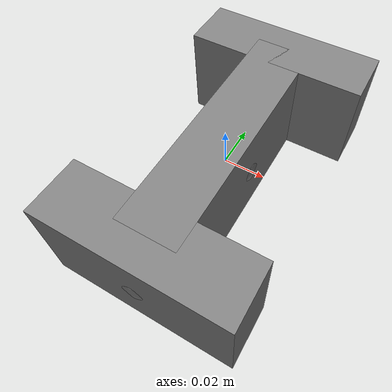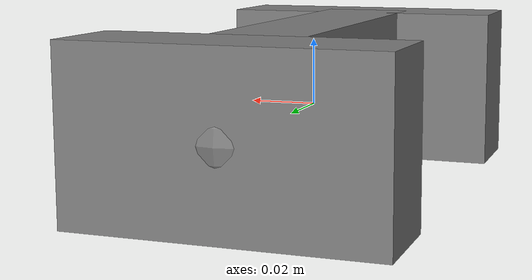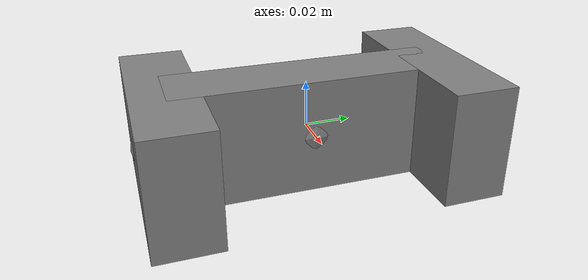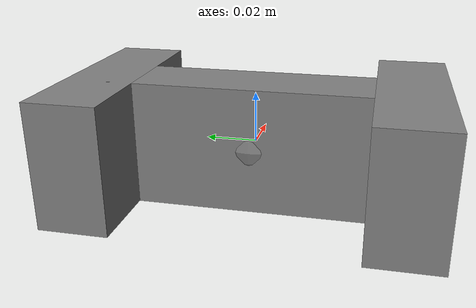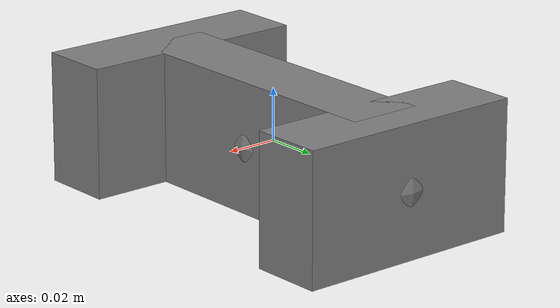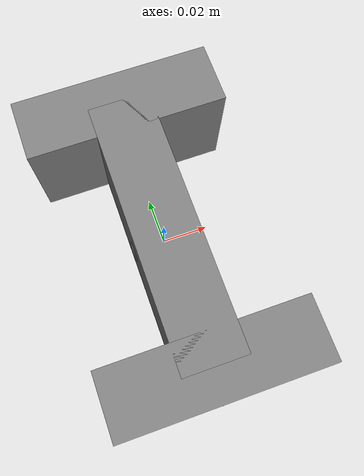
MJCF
<mujoco model="shape_i">
  <worldbody>
    <body name="shape">
      <geom name="stem" type="box" size="0.014 0.06 0.025" pos="0.0 0.0 0.0" />
      <geom name="serif_top" type="box" size="0.045 0.014 0.025"
        pos="0.0 0.06 0.0" />
      <geom name="serif_bot" type="box" size="0.045 0.014 0.025"
        pos="0.0 -0.06 0.0" />
      <site name="attractor_site1" pos="0.0 0.06 0.0" size="0.015" />
      <site name="attractor_site2" pos="0.0 0.0 0.0" size="0.015" />
      <site name="attractor_site3" pos="0.0 -0.06 0.0" size="0.015" />
    </body>
  </worldbody>
</mujoco>
